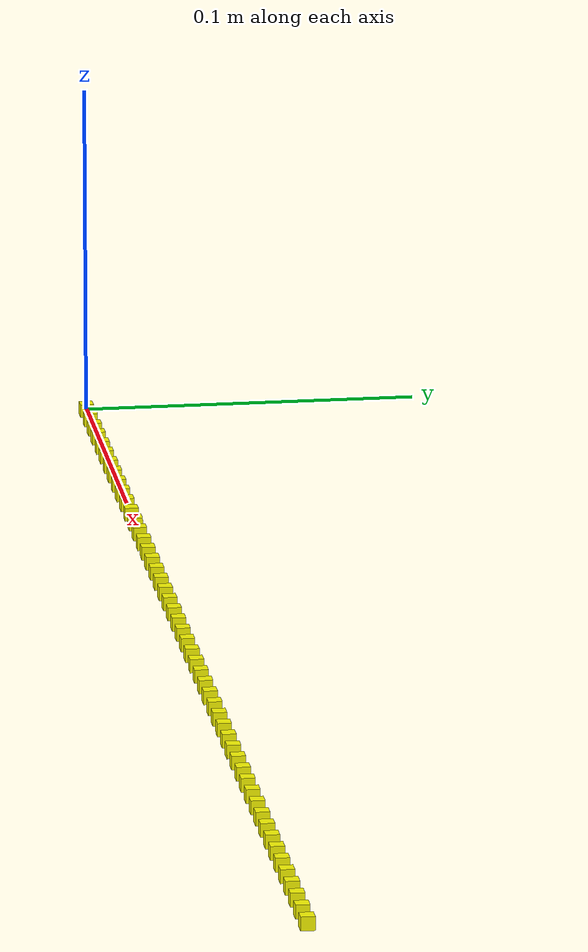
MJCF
<mujoco model="2D_UpperLimb">
  <compiler inertiafromgeom="auto" angle="radian" />
   <option timestep="0.0001" iterations="50" solver="PGS" integrator="Euler" gravity="0 0 0" collision="predefined">
     <flag energy="enable" />
   </option>
   <asset>
     <texture type="skybox" builtin="flat" rgb1="1 1 1" rgb2="1 1 1" width="100" height="100" />
      <material name="JointColor" rgba="1.0 1.0 0.0 1" />
      <material name="LimbColor" rgba="0.7 0.7 0.7 1" />
   </asset>
   <worldbody>
     <body name="cameramover" mocap="true" pos="0 0 0">
        <camera name="mycamera" pos="0.0 2.0 2.0" euler="1.5707 0 0" />
      </body>
      <body name="root" pos="0 0 0" euler="0 0 0">
        <joint ref="0" type="slide" name="sender" stiffness="10" pos=" 0.0000 0 0" axis="1 0 0" />
         <geom type="box" name="mass1" mass="0.1" pos=" 0.0000 0 0" material="JointColor" size=" 0.0020 0.0020 0.0020" />
         <body name="node2" euler="0 0 0" pos=" 0.0100 0 0">
           <joint ref="0" type="slide" name="spring2" stiffness="10" pos=" 0.0000 0 0" axis="1 0 0" />
            <geom type="box" name="mass2" mass="0.1" pos=" 0.0000 0 0" material="JointColor" size=" 0.0020 0.0020 0.0020" />
            <body name="node3" euler="0 0 0" pos=" 0.0100 0 0">
              <joint ref="0" type="slide" name="spring3" stiffness="10" pos=" 0.0000 0 0" axis="1 0 0" />
               <geom type="box" name="mass3" mass="0.1" pos=" 0.0000 0 0" material="JointColor" size=" 0.0020 0.0020 0.0020" />
               <body name="node4" euler="0 0 0" pos=" 0.0100 0 0">
                 <joint ref="0" type="slide" name="spring4" stiffness="10" pos=" 0.0000 0 0" axis="1 0 0" />
                  <geom type="box" name="mass4" mass="0.1" pos=" 0.0000 0 0" material="JointColor" size=" 0.0020 0.0020 0.0020" />
                  <body name="node5" euler="0 0 0" pos=" 0.0100 0 0">
                    <joint ref="0" type="slide" name="spring5" stiffness="10" pos=" 0.0000 0 0" axis="1 0 0" />
                     <geom type="box" name="mass5" mass="0.1" pos=" 0.0000 0 0" material="JointColor" size=" 0.0020 0.0020 0.0020" />
                     <body name="node6" euler="0 0 0" pos=" 0.0100 0 0">
                       <joint ref="0" type="slide" name="spring6" stiffness="10" pos=" 0.0000 0 0" axis="1 0 0" />
                        <geom type="box" name="mass6" mass="0.1" pos=" 0.0000 0 0" material="JointColor" size=" 0.0020 0.0020 0.0020" />
                        <body name="node7" euler="0 0 0" pos=" 0.0100 0 0">
                          <joint ref="0" type="slide" name="spring7" stiffness="10" pos=" 0.0000 0 0" axis="1 0 0" />
                           <geom type="box" name="mass7" mass="0.1" pos=" 0.0000 0 0" material="JointColor" size=" 0.0020 0.0020 0.0020" />
                           <body name="node8" euler="0 0 0" pos=" 0.0100 0 0">
                             <joint ref="0" type="slide" name="spring8" stiffness="10" pos=" 0.0000 0 0" axis="1 0 0" />
                              <geom type="box" name="mass8" mass="0.1" pos=" 0.0000 0 0" material="JointColor" size=" 0.0020 0.0020 0.0020" />
                              <body name="node9" euler="0 0 0" pos=" 0.0100 0 0">
                                <joint ref="0" type="slide" name="spring9" stiffness="10" pos=" 0.0000 0 0" axis="1 0 0" />
                                 <geom type="box" name="mass9" mass="0.1" pos=" 0.0000 0 0" material="JointColor" size=" 0.0020 0.0020 0.0020" />
                                 <body name="node10" euler="0 0 0" pos=" 0.0100 0 0">
                                   <joint ref="0" type="slide" name="spring10" stiffness="10" pos=" 0.0000 0 0" axis="1 0 0" />
                                    <geom type="box" name="mass10" mass="0.1" pos=" 0.0000 0 0" material="JointColor" size=" 0.0020 0.0020 0.0020" />
                                    <body name="node11" euler="0 0 0" pos=" 0.0100 0 0">
                                      <joint ref="0" type="slide" name="spring11" stiffness="10" pos=" 0.0000 0 0" axis="1 0 0" />
                                       <geom type="box" name="mass11" mass="0.1" pos=" 0.0000 0 0" material="JointColor" size=" 0.0020 0.0020 0.0020" />
                                       <body name="node12" euler="0 0 0" pos=" 0.0100 0 0">
                                         <joint ref="0" type="slide" name="spring12" stiffness="10" pos=" 0.0000 0 0" axis="1 0 0" />
                                          <geom type="box" name="mass12" mass="0.1" pos=" 0.0000 0 0" material="JointColor" size=" 0.0020 0.0020 0.0020" />
                                          <body name="node13" euler="0 0 0" pos=" 0.0100 0 0">
                                            <joint ref="0" type="slide" name="spring13" stiffness="10" pos=" 0.0000 0 0" axis="1 0 0" />
                                             <geom type="box" name="mass13" mass="0.1" pos=" 0.0000 0 0" material="JointColor" size=" 0.0020 0.0020 0.0020" />
                                             <body name="node14" euler="0 0 0" pos=" 0.0100 0 0">
                                               <joint ref="0" type="slide" name="spring14" stiffness="10" pos=" 0.0000 0 0" axis="1 0 0" />
                                                <geom type="box" name="mass14" mass="0.1" pos=" 0.0000 0 0" material="JointColor" size=" 0.0020 0.0020 0.0020" />
                                                <body name="node15" euler="0 0 0" pos=" 0.0100 0 0">
                                                  <joint ref="0" type="slide" name="spring15" stiffness="10" pos=" 0.0000 0 0" axis="1 0 0" />
                                                   <geom type="box" name="mass15" mass="0.1" pos=" 0.0000 0 0" material="JointColor" size=" 0.0020 0.0020 0.0020" />
                                                   <body name="node16" euler="0 0 0" pos=" 0.0100 0 0">
                                                     <joint ref="0" type="slide" name="spring16" stiffness="10" pos=" 0.0000 0 0" axis="1 0 0" />
                                                      <geom type="box" name="mass16" mass="0.1" pos=" 0.0000 0 0" material="JointColor" size=" 0.0020 0.0020 0.0020" />
                                                      <body name="node17" euler="0 0 0" pos=" 0.0100 0 0">
                                                        <joint ref="0" type="slide" name="spring17" stiffness="10" pos=" 0.0000 0 0" axis="1 0 0" />
                                                         <geom type="box" name="mass17" mass="0.1" pos=" 0.0000 0 0" material="JointColor" size=" 0.0020 0.0020 0.0020" />
                                                         <body name="node18" euler="0 0 0" pos=" 0.0100 0 0">
                                                           <joint ref="0" type="slide" name="spring18" stiffness="10" pos=" 0.0000 0 0" axis="1 0 0" />
                                                            <geom type="box" name="mass18" mass="0.1" pos=" 0.0000 0 0" material="JointColor" size=" 0.0020 0.0020 0.0020" />
                                                            <body name="node19" euler="0 0 0" pos=" 0.0100 0 0">
                                                              <joint ref="0" type="slide" name="spring19" stiffness="10" pos=" 0.0000 0 0" axis="1 0 0" />
                                                               <geom type="box" name="mass19" mass="0.1" pos=" 0.0000 0 0" material="JointColor" size=" 0.0020 0.0020 0.0020" />
                                                               <body name="node20" euler="0 0 0" pos=" 0.0100 0 0">
                                                                 <joint ref="0" type="slide" name="spring20" stiffness="10" pos=" 0.0000 0 0" axis="1 0 0" />
                                                                  <geom type="box" name="mass20" mass="0.1" pos=" 0.0000 0 0" material="JointColor" size=" 0.0020 0.0020 0.0020" />
                                                                  <body name="node21" euler="0 0 0" pos=" 0.0100 0 0">
                                                                    <joint ref="0" type="slide" name="spring21" stiffness="10" pos=" 0.0000 0 0" axis="1 0 0" />
                                                                     <geom type="box" name="mass21" mass="0.1" pos=" 0.0000 0 0" material="JointColor" size=" 0.0020 0.0020 0.0020" />
                                                                     <body name="node22" euler="0 0 0" pos=" 0.0100 0 0">
                                                                       <joint ref="0" type="slide" name="spring22" stiffness="10" pos=" 0.0000 0 0" axis="1 0 0" />
                                                                        <geom type="box" name="mass22" mass="0.1" pos=" 0.0000 0 0" material="JointColor" size=" 0.0020 0.0020 0.0020" />
                                                                        <body name="node23" euler="0 0 0" pos=" 0.0100 0 0">
                                                                          <joint ref="0" type="slide" name="spring23" stiffness="10" pos=" 0.0000 0 0" axis="1 0 0" />
                                                                           <geom type="box" name="mass23" mass="0.1" pos=" 0.0000 0 0" material="JointColor" size=" 0.0020 0.0020 0.0020" />
                                                                           <body name="node24" euler="0 0 0" pos=" 0.0100 0 0">
                                                                             <joint ref="0" type="slide" name="spring24" stiffness="10" pos=" 0.0000 0 0" axis="1 0 0" />
                                                                              <geom type="box" name="mass24" mass="0.1" pos=" 0.0000 0 0" material="JointColor" size=" 0.0020 0.0020 0.0020" />
                                                                              <body name="node25" euler="0 0 0" pos=" 0.0100 0 0">
                                                                                <joint ref="0" type="slide" name="spring25" stiffness="10" pos=" 0.0000 0 0" axis="1 0 0" />
                                                                                 <geom type="box" name="mass25" mass="0.1" pos=" 0.0000 0 0" material="JointColor" size=" 0.0020 0.0020 0.0020" />
                                                                                 <body name="node26" euler="0 0 0" pos=" 0.0100 0 0">
                                                                                   <joint ref="0" type="slide" name="spring26" stiffness="10" pos=" 0.0000 0 0" axis="1 0 0" />
                                                                                    <geom type="box" name="mass26" mass="0.1" pos=" 0.0000 0 0" material="JointColor" size=" 0.0020 0.0020 0.0020" />
                                                                                    <body name="node27" euler="0 0 0" pos=" 0.0100 0 0">
                                                                                      <joint ref="0" type="slide" name="spring27" stiffness="10" pos=" 0.0000 0 0" axis="1 0 0" />
                                                                                       <geom type="box" name="mass27" mass="0.1" pos=" 0.0000 0 0" material="JointColor" size=" 0.0020 0.0020 0.0020" />
                                                                                       <body name="node28" euler="0 0 0" pos=" 0.0100 0 0">
                                                                                         <joint ref="0" type="slide" name="spring28" stiffness="10" pos=" 0.0000 0 0" axis="1 0 0" />
                                                                                          <geom type="box" name="mass28" mass="0.1" pos=" 0.0000 0 0" material="JointColor" size=" 0.0020 0.0020 0.0020" />
                                                                                          <body name="node29" euler="0 0 0" pos=" 0.0100 0 0">
                                                                                            <joint ref="0" type="slide" name="spring29" stiffness="10" pos=" 0.0000 0 0" axis="1 0 0" />
                                                                                             <geom type="box" name="mass29" mass="0.1" pos=" 0.0000 0 0" material="JointColor" size=" 0.0020 0.0020 0.0020" />
                                                                                             <body name="node30" euler="0 0 0" pos=" 0.0100 0 0">
                                                                                               <joint ref="0" type="slide" name="spring30" stiffness="10" pos=" 0.0000 0 0" axis="1 0 0" />
                                                                                                <geom type="box" name="mass30" mass="0.1" pos=" 0.0000 0 0" material="JointColor" size=" 0.0020 0.0020 0.0020" />
                                                                                                <body name="node31" euler="0 0 0" pos=" 0.0100 0 0">
                                                                                                  <joint ref="0" type="slide" name="spring31" stiffness="10" pos=" 0.0000 0 0" axis="1 0 0" />
                                                                                                   <geom type="box" name="mass31" mass="0.1" pos=" 0.0000 0 0" material="JointColor" size=" 0.0020 0.0020 0.0020" />
                                                                                                   <body name="node32" euler="0 0 0" pos=" 0.0100 0 0">
                                                                                                     <joint ref="0" type="slide" name="spring32" stiffness="10" pos=" 0.0000 0 0" axis="1 0 0" />
                                                                                                      <geom type="box" name="mass32" mass="0.1" pos=" 0.0000 0 0" material="JointColor" size=" 0.0020 0.0020 0.0020" />
                                                                                                      <body name="node33" euler="0 0 0" pos=" 0.0100 0 0">
                                                                                                        <joint ref="0" type="slide" name="spring33" stiffness="10" pos=" 0.0000 0 0" axis="1 0 0" />
                                                                                                         <geom type="box" name="mass33" mass="0.1" pos=" 0.0000 0 0" material="JointColor" size=" 0.0020 0.0020 0.0020" />
                                                                                                         <body name="node34" euler="0 0 0" pos=" 0.0100 0 0">
                                                                                                           <joint ref="0" type="slide" name="spring34" stiffness="10" pos=" 0.0000 0 0" axis="1 0 0" />
                                                                                                            <geom type="box" name="mass34" mass="0.1" pos=" 0.0000 0 0" material="JointColor" size=" 0.0020 0.0020 0.0020" />
                                                                                                            <body name="node35" euler="0 0 0" pos=" 0.0100 0 0">
                                                                                                              <joint ref="0" type="slide" name="spring35" stiffness="10" pos=" 0.0000 0 0" axis="1 0 0" />
                                                                                                               <geom type="box" name="mass35" mass="0.1" pos=" 0.0000 0 0" material="JointColor" size=" 0.0020 0.0020 0.0020" />
                                                                                                               <body name="node36" euler="0 0 0" pos=" 0.0100 0 0">
                                                                                                                 <joint ref="0" type="slide" name="spring36" stiffness="10" pos=" 0.0000 0 0" axis="1 0 0" />
                                                                                                                  <geom type="box" name="mass36" mass="0.1" pos=" 0.0000 0 0" material="JointColor" size=" 0.0020 0.0020 0.0020" />
                                                                                                                  <body name="node37" euler="0 0 0" pos=" 0.0100 0 0">
                                                                                                                    <joint ref="0" type="slide" name="spring37" stiffness="10" pos=" 0.0000 0 0" axis="1 0 0" />
                                                                                                                     <geom type="box" name="mass37" mass="0.1" pos=" 0.0000 0 0" material="JointColor" size=" 0.0020 0.0020 0.0020" />
                                                                                                                     <body name="node38" euler="0 0 0" pos=" 0.0100 0 0">
                                                                                                                       <joint ref="0" type="slide" name="spring38" stiffness="10" pos=" 0.0000 0 0" axis="1 0 0" />
                                                                                                                        <geom type="box" name="mass38" mass="0.1" pos=" 0.0000 0 0" material="JointColor" size=" 0.0020 0.0020 0.0020" />
                                                                                                                        <body name="node39" euler="0 0 0" pos=" 0.0100 0 0">
                                                                                                                          <joint ref="0" type="slide" name="spring39" stiffness="10" pos=" 0.0000 0 0" axis="1 0 0" />
                                                                                                                           <geom type="box" name="mass39" mass="0.1" pos=" 0.0000 0 0" material="JointColor" size=" 0.0020 0.0020 0.0020" />
                                                                                                                           <body name="node40" euler="0 0 0" pos=" 0.0100 0 0">
                                                                                                                             <joint ref="0" type="slide" name="spring40" stiffness="10" pos=" 0.0000 0 0" axis="1 0 0" />
                                                                                                                              <geom type="box" name="mass40" mass="0.1" pos=" 0.0000 0 0" material="JointColor" size=" 0.0020 0.0020 0.0020" />
                                                                                                                              <body name="node41" euler="0 0 0" pos=" 0.0100 0 0">
                                                                                                                                <joint ref="0" type="slide" name="spring41" stiffness="10" pos=" 0.0000 0 0" axis="1 0 0" />
                                                                                                                                 <geom type="box" name="mass41" mass="0.1" pos=" 0.0000 0 0" material="JointColor" size=" 0.0020 0.0020 0.0020" />
                                                                                                                                 <body name="node42" euler="0 0 0" pos=" 0.0100 0 0">
                                                                                                                                   <joint ref="0" type="slide" name="spring42" stiffness="10" pos=" 0.0000 0 0" axis="1 0 0" />
                                                                                                                                    <geom type="box" name="mass42" mass="0.1" pos=" 0.0000 0 0" material="JointColor" size=" 0.0020 0.0020 0.0020" />
                                                                                                                                    <body name="node43" euler="0 0 0" pos=" 0.0100 0 0">
                                                                                                                                      <joint ref="0" type="slide" name="spring43" stiffness="10" pos=" 0.0000 0 0" axis="1 0 0" />
                                                                                                                                       <geom type="box" name="mass43" mass="0.1" pos=" 0.0000 0 0" material="JointColor" size=" 0.0020 0.0020 0.0020" />
                                                                                                                                       <body name="node44" euler="0 0 0" pos=" 0.0100 0 0">
                                                                                                                                         <joint ref="0" type="slide" name="spring44" stiffness="10" pos=" 0.0000 0 0" axis="1 0 0" />
                                                                                                                                          <geom type="box" name="mass44" mass="0.1" pos=" 0.0000 0 0" material="JointColor" size=" 0.0020 0.0020 0.0020" />
                                                                                                                                          <body name="node45" euler="0 0 0" pos=" 0.0100 0 0">
                                                                                                                                            <joint ref="0" type="slide" name="spring45" stiffness="10" pos=" 0.0000 0 0" axis="1 0 0" />
                                                                                                                                             <geom type="box" name="mass45" mass="0.1" pos=" 0.0000 0 0" material="JointColor" size=" 0.0020 0.0020 0.0020" />
                                                                                                                                             <body name="node46" euler="0 0 0" pos=" 0.0100 0 0">
                                                                                                                                               <joint ref="0" type="slide" name="spring46" stiffness="10" pos=" 0.0000 0 0" axis="1 0 0" />
                                                                                                                                                <geom type="box" name="mass46" mass="0.1" pos=" 0.0000 0 0" material="JointColor" size=" 0.0020 0.0020 0.0020" />
                                                                                                                                                <body name="node47" euler="0 0 0" pos=" 0.0100 0 0">
                                                                                                                                                  <joint ref="0" type="slide" name="spring47" stiffness="10" pos=" 0.0000 0 0" axis="1 0 0" />
                                                                                                                                                   <geom type="box" name="mass47" mass="0.1" pos=" 0.0000 0 0" material="JointColor" size=" 0.0020 0.0020 0.0020" />
                                                                                                                                                   <body name="node48" euler="0 0 0" pos=" 0.0100 0 0">
                                                                                                                                                     <joint ref="0" type="slide" name="spring48" stiffness="10" pos=" 0.0000 0 0" axis="1 0 0" />
                                                                                                                                                      <geom type="box" name="mass48" mass="0.1" pos=" 0.0000 0 0" material="JointColor" size=" 0.0020 0.0020 0.0020" />
                                                                                                                                                      <body name="node49" euler="0 0 0" pos=" 0.0100 0 0">
                                                                                                                                                        <joint ref="0" type="slide" name="spring49" stiffness="10" pos=" 0.0000 0 0" axis="1 0 0" />
                                                                                                                                                         <geom type="box" name="mass49" mass="0.1" pos=" 0.0000 0 0" material="JointColor" size=" 0.0020 0.0020 0.0020" />
                                                                                                                                                         <body name="node50" euler="0 0 0" pos=" 0.0100 0 0">
                                                                                                                                                           <joint ref="0" type="slide" name="spring50" stiffness="10" pos=" 0.0000 0 0" axis="1 0 0" />
                                                                                                                                                            <geom type="box" name="tip" mass="0.1" pos=" 0.0000 0 0" material="JointColor" size=" 0.0020 0.0020 0.0020" />
                                                                                                                                                         </body>
                                                                                                                                                      </body>
                                                                                                                                                   </body>
                                                                                                                                                </body>
                                                                                                                                             </body>
                                                                                                                                          </body>
                                                                                                                                       </body>
                                                                                                                                    </body>
                                                                                                                                 </body>
                                                                                                                              </body>
                                                                                                                           </body>
                                                                                                                        </body>
                                                                                                                     </body>
                                                                                                                  </body>
                                                                                                               </body>
                                                                                                            </body>
                                                                                                         </body>
                                                                                                      </body>
                                                                                                   </body>
                                                                                                </body>
                                                                                             </body>
                                                                                          </body>
                                                                                       </body>
                                                                                    </body>
                                                                                 </body>
                                                                              </body>
                                                                           </body>
                                                                        </body>
                                                                     </body>
                                                                  </body>
                                                               </body>
                                                            </body>
                                                         </body>
                                                      </body>
                                                   </body>
                                                </body>
                                             </body>
                                          </body>
                                       </body>
                                    </body>
                                 </body>
                              </body>
                           </body>
                        </body>
                     </body>
                  </body>
               </body>
            </body>
         </body>
      </body>
   </worldbody>
   <actuator>
     <motor joint="sender" name="sender_actuator" forcelimited="false" />
   </actuator>
</mujoco>
